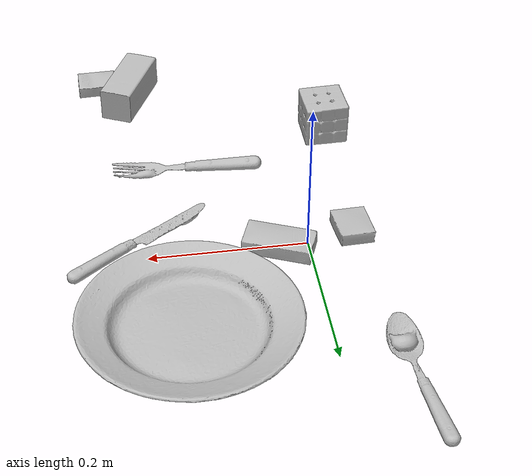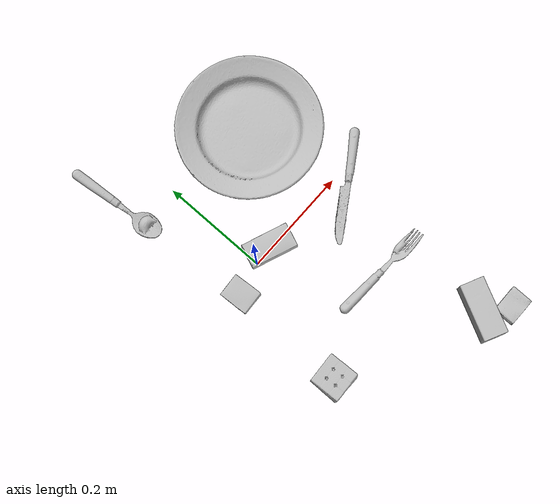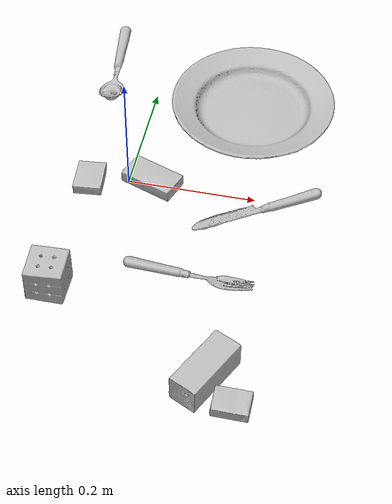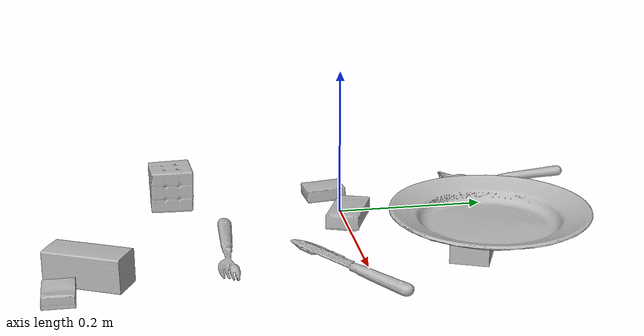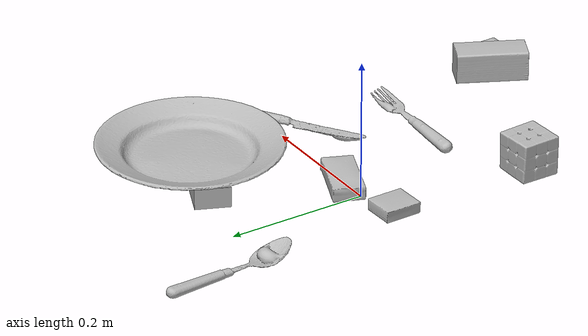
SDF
<sdf version="1.4">
  <world name="default">
    <light name="light1" type="point">
      <pose>0 0 1 0 0 0</pose>
      <diffuse>3 3 3 1</diffuse>
      <specular>3 3 3 1</specular>
    </light>
    <light name="light2" type="point">
      <pose>0 0.5 2 0 0 0</pose>
      <diffuse>1 1 1 1</diffuse>
      <specular>1 1 1 1</specular>
    </light>
    <light name="light3" type="point">
      <pose>0 0.5 2 0 0 0</pose>
      <diffuse>3 3 3 1</diffuse>
      <specular>3 3 3 1</specular>
    </light>
    <scene>
      <ambient>0.7 0.7 0.7</ambient>
    </scene>
    <model name="box11">
      <link name="link_box11">
        <collision name="default">
          <geometry>
            <mesh>
              <uri>model://rubiks_cube/collision_meshes/collision.obj</uri>
              <scale>1.0 1.0 1.0</scale>
            </mesh>
          </geometry>
          <surface>
            <friction>
              <ode>
                <mu>0.5</mu>
                <mu2>0.5</mu2>
              </ode>
            </friction>
          <contact>
        <ode>
            <max_vel>0</max_vel>
            <min_depth>0.0001</min_depth>
            <kp>1e8</kp>
        </ode>
    </contact></surface>
        </collision>
        <visual name="default">
          <geometry>
            <mesh>
              <uri>model://rubiks_cube/visual_meshes/visual.dae</uri>
              <scale>1.0 1.0 1.0</scale>
            </mesh>
          </geometry>
        </visual>
        <inertial>
          <mass>0.14537504315376282</mass>
          <pose>2.6721039830590598e-05 5.2569666877388954e-05 -7.264316082000732e-06 -0.05467316775404926 -0.09814130205097539 -0.03445549690793288</pose>
          <inertia>
            <ixx>8.032947e-05</ixx>
            <iyy>7.9954865e-05</iyy>
            <izz>8.099513e-05</izz>
            <ixy>0</ixy>
            <ixz>0</ixz>
            <iyz>0</iyz>
          </inertia>
        </inertial>
      </link>
      <pose>-0.06309342384338379 -0.22934511303901672 0.02867898717522621 -2.590021402668742e-06 -8.606970993183151e-07 -3.1041976252258547</pose>
    </model>
    <model name="box12">
      <link name="link_box12">
        <collision name="default">
          <geometry>
            <mesh>
              <uri>model://cracker_box/collision_meshes/collision.obj</uri>
              <scale>0.25 0.25 0.25</scale>
            </mesh>
          </geometry>
          <surface>
            <friction>
              <ode>
                <mu>0.5</mu>
                <mu2>0.5</mu2>
              </ode>
            </friction>
          <contact>
        <ode>
            <max_vel>0</max_vel>
            <min_depth>0.0001</min_depth>
            <kp>1e8</kp>
        </ode>
    </contact></surface>
        </collision>
        <visual name="default">
          <geometry>
            <mesh>
              <uri>model://cracker_box/visual_meshes/visual.dae</uri>
              <scale>0.25 0.25 0.25</scale>
            </mesh>
          </geometry>
        </visual>
        <inertial>
          <mass>0.04629049822688103</mass>
          <pose>0.00023660360602661967 6.358561950037256e-05 -0.00042573834070935845 -0.00031620769195764 -0.01110649332573822 0.0025467952358288496</pose>
          <inertia>
            <ixx>7.358898e-06</ixx>
            <iyy>1.2150985e-05</iyy>
            <izz>1.7340568e-05</izz>
            <ixy>0</ixy>
            <ixz>0</ixz>
            <iyz>0</iyz>
          </inertia>
        </inertial>
      </link>
      <pose>0.2352224588394165 -0.37952715158462524 0.009120454080402851 -0.011788174186284934 -0.007367103063919416 -3.141490051491588</pose>
    </model>
    <model name="box13">
      <link name="link_box13">
        <collision name="default">
          <geometry>
            <mesh>
              <uri>model://sugar_box/collision_meshes/collision.obj</uri>
              <scale>0.5 0.5 0.5</scale>
            </mesh>
          </geometry>
          <surface>
            <friction>
              <ode>
                <mu>0.5</mu>
                <mu2>0.5</mu2>
              </ode>
            </friction>
          <contact>
        <ode>
            <max_vel>0</max_vel>
            <min_depth>0.0001</min_depth>
            <kp>1e8</kp>
        </ode>
    </contact></surface>
        </collision>
        <visual name="default">
          <geometry>
            <mesh>
              <uri>model://sugar_box/visual_meshes/visual.dae</uri>
              <scale>0.5 0.5 0.5</scale>
            </mesh>
          </geometry>
        </visual>
        <inertial>
          <mass>0.06844717264175415</mass>
          <pose>0.0005171863595023751 1.924554817378521e-05 -0.00018182402709499002 -0.0004046259509043031 0.0010506635218006705 0.0026153792547683827</pose>
          <inertia>
            <ixx>1.4257497e-05</ixx>
            <iyy>4.608316e-05</iyy>
            <izz>5.5167053e-05</izz>
            <ixy>0</ixy>
            <ixz>0</ixz>
            <iyz>0</iyz>
          </inertia>
        </inertial>
      </link>
      <pose>0.03690307214856148 0.004703276790678501 0.011399306356906891 0.0007752534353417117 -0.023433228157990246 -0.3811666616782632</pose>
    </model>
    <model name="box21">
      <link name="link_box21">
        <collision name="default">
          <geometry>
            <mesh>
              <uri>model://wood_block/collision_meshes/collision.obj</uri>
              <scale>0.5 0.5 0.5</scale>
            </mesh>
          </geometry>
          <surface>
            <friction>
              <ode>
                <mu>0.5</mu>
                <mu2>0.5</mu2>
              </ode>
            </friction>
          <contact>
        <ode>
            <max_vel>0</max_vel>
            <min_depth>0.0001</min_depth>
            <kp>1e8</kp>
        </ode>
    </contact></surface>
        </collision>
        <visual name="default">
          <geometry>
            <mesh>
              <uri>model://wood_block/visual_meshes/visual.dae</uri>
              <scale>0.5 0.5 0.5</scale>
            </mesh>
          </geometry>
        </visual>
        <inertial>
          <mass>0.22006426751613617</mass>
          <pose>-2.9066577553749084e-06 -0.00028540476341731846 0.00013204292918089777 -0.05220890442695651 -0.005192696130650637 -0.006861379915905358</pose>
          <inertia>
            <ixx>7.361981e-05</ixx>
            <iyy>0.00023256506</iyy>
            <izz>0.00023169514</izz>
            <ixy>0</ixy>
            <ixz>0</ixz>
            <iyz>0</iyz>
          </inertia>
        </inertial>
      </link>
      <pose>0.19194963574409485 -0.34432452917099 0.022629259154200554 -0.005208486866984063 0.005718746356614517 -2.028083675174581</pose>
    </model>
    <model name="box22">
      <link name="link_box22">
        <collision name="default">
          <geometry>
            <mesh>
              <uri>model://jenga/collision_meshes/collision.obj</uri>
              <scale>1.0 1.0 1.0</scale>
            </mesh>
          </geometry>
          <surface>
            <friction>
              <ode>
                <mu>0.5</mu>
                <mu2>0.5</mu2>
              </ode>
            </friction>
          <contact>
        <ode>
            <max_vel>0</max_vel>
            <min_depth>0.0001</min_depth>
            <kp>1e8</kp>
        </ode>
    </contact></surface>
        </collision>
        <visual name="default">
          <geometry>
            <mesh>
              <uri>model://jenga/visual_meshes/visual.dae</uri>
              <scale>1.0 1.0 1.0</scale>
            </mesh>
          </geometry>
        </visual>
        <inertial>
          <mass>0.1883949637413025</mass>
          <pose>-2.502855807051674e-07 -0.00010250010382151231 -4.0923405322246253e-05 0.0 -7.342154049184251e-07 0.0</pose>
          <inertia>
            <ixx>5.213346e-05</ixx>
            <iyy>0.0003532549</iyy>
            <izz>0.00037712968</izz>
            <ixy>0</ixy>
            <ixz>0</ixz>
            <iyz>0</iyz>
          </inertia>
        </inertial>
      </link>
      <pose>0.14733943343162537 0.15451422333717346 0.015001780353486538 -3.82573749356902e-05 -5.57374454332991e-06 2.7406209881346753</pose>
    </model>
    <model name="box23">
      <link name="link_box23">
        <collision name="default">
          <geometry>
            <mesh>
              <uri>model://pudding_box/collision_meshes/collision.obj</uri>
              <scale>0.5 0.5 0.5</scale>
            </mesh>
          </geometry>
          <surface>
            <friction>
              <ode>
                <mu>0.5</mu>
                <mu2>0.5</mu2>
              </ode>
            </friction>
          <contact>
        <ode>
            <max_vel>0</max_vel>
            <min_depth>0.0001</min_depth>
            <kp>1e8</kp>
        </ode>
    </contact></surface>
        </collision>
        <visual name="default">
          <geometry>
            <mesh>
              <uri>model://pudding_box/visual_meshes/visual.dae</uri>
              <scale>0.5 0.5 0.5</scale>
            </mesh>
          </geometry>
        </visual>
        <inertial>
          <mass>0.030779412016272545</mass>
          <pose>0.00024474109522998333 0.0004033942532259971 -0.0002594413817860186 0.0052131022413302 -0.00660379919873188 0.020079828882866795</pose>
          <inertia>
            <ixx>8.6986365e-06</ixx>
            <iyy>5.8525034e-06</iyy>
            <izz>1.2845808e-05</izz>
            <ixy>0</ixy>
            <ixz>0</ixz>
            <iyz>0</iyz>
          </inertia>
        </inertial>
      </link>
      <pose>-0.05910255014896393 -0.013919590972363949 0.009862903505563736 0.022348503867803963 -0.011391721834085588 0.06412276964661627</pose>
    </model>
    <model name="plate1">
      <link name="link_plate1">
        <collision name="default">
          <geometry>
            <mesh>
              <uri>model://plate/collision_meshes/collision.obj</uri>
              <scale>1.0 1.0 1.0</scale>
            </mesh>
          </geometry>
          <surface>
            <friction>
              <ode>
                <mu>0.5</mu>
                <mu2>0.5</mu2>
              </ode>
            </friction>
          <contact>
        <ode>
            <max_vel>0</max_vel>
            <min_depth>0.0001</min_depth>
            <kp>1e8</kp>
        </ode>
    </contact></surface>
        </collision>
        <visual name="default">
          <geometry>
            <mesh>
              <uri>model://plate/visual_meshes/visual.dae</uri>
              <scale>1.0 1.0 1.0</scale>
            </mesh>
          </geometry>
        </visual>
        <inertial>
          <mass>0.2551877498626709</mass>
          <pose>-0.0006044633337296546 0.0002782584633678198 -0.0010561984963715076 0.002218758596895186 -0.003225500510611216 0.45261892370472845</pose>
          <inertia>
            <ixx>0.0011937734</ixx>
            <iyy>0.0011823553</iyy>
            <izz>0.002334842</izz>
            <ixy>0</ixy>
            <ixz>0</ixz>
            <iyz>0</iyz>
          </inertia>
        </inertial>
      </link>
      <pose>0.16680341958999634 0.1651696115732193 0.04366663470864296 0.001027143261713656 0.0001206214975468374 1.5767449800217381</pose>
    </model>
    <model name="silverware1">
      <link name="link_silverware1">
        <collision name="default">
          <geometry>
            <mesh>
              <uri>model://knife/collision_meshes/collision.obj</uri>
              <scale>1.0 1.0 1.0</scale>
            </mesh>
          </geometry>
          <surface>
            <friction>
              <ode>
                <mu>0.5</mu>
                <mu2>0.5</mu2>
              </ode>
            </friction>
          <contact>
        <ode>
            <max_vel>0</max_vel>
            <min_depth>0.0001</min_depth>
            <kp>1e8</kp>
        </ode>
    </contact></surface>
        </collision>
        <visual name="default">
          <geometry>
            <mesh>
              <uri>model://knife/visual_meshes/visual.dae</uri>
              <scale>1.0 1.0 1.0</scale>
            </mesh>
          </geometry>
        </visual>
        <inertial>
          <mass>0.030903667211532593</mass>
          <pose>-0.023785250261425972 0.0015275125624611974 5.062023410573602e-05 0.07305665398911224 0.017248417197799442 -0.0074098217442817044</pose>
          <inertia>
            <ixx>8.7717143e-07</ixx>
            <iyy>0.00011872688</iyy>
            <izz>0.000119009375</izz>
            <ixy>0</ixy>
            <ixz>0</ixz>
            <iyz>0</iyz>
          </inertia>
        </inertial>
      </link>
      <pose>0.20765700936317444 -0.024659879505634308 0.00794652197510004 -0.023906596331028544 -0.014542501817713455 -2.5739450722765627</pose>
    </model>
    <model name="silverware2">
      <link name="link_silverware2">
        <collision name="default">
          <geometry>
            <mesh>
              <uri>model://spoon/collision_meshes/collision.obj</uri>
              <scale>1.0 1.0 1.0</scale>
            </mesh>
          </geometry>
          <surface>
            <friction>
              <ode>
                <mu>0.5</mu>
                <mu2>0.5</mu2>
              </ode>
            </friction>
          <contact>
        <ode>
            <max_vel>0</max_vel>
            <min_depth>0.0001</min_depth>
            <kp>1e8</kp>
        </ode>
    </contact></surface>
        </collision>
        <visual name="default">
          <geometry>
            <mesh>
              <uri>model://spoon/visual_meshes/visual.dae</uri>
              <scale>1.0 1.0 1.0</scale>
            </mesh>
          </geometry>
        </visual>
        <inertial>
          <mass>0.020994963124394417</mass>
          <pose>-0.005526323337107897 -0.00160341733135283 -0.0007271658978424966 0.035216710718480135 -0.03906584501417282 0.00615060951780049</pose>
          <inertia>
            <ixx>1.1677738e-06</ixx>
            <iyy>7.988513e-05</iyy>
            <izz>8.046103e-05</izz>
            <ixy>0</ixy>
            <ixz>0</ixz>
            <iyz>0</iyz>
          </inertia>
        </inertial>
      </link>
      <pose>-0.08034521341323853 0.25552603602409363 0.008385264314711094 0.006731853356463656 0.02689297265074608 -1.480196561538474</pose>
    </model>
    <model name="silverware3">
      <link name="link_silverware3">
        <collision name="default">
          <geometry>
            <mesh>
              <uri>model://fork/collision_meshes/collision.obj</uri>
              <scale>1.0 1.0 1.0</scale>
            </mesh>
          </geometry>
          <surface>
            <friction>
              <ode>
                <mu>0.5</mu>
                <mu2>0.5</mu2>
              </ode>
            </friction>
          <contact>
        <ode>
            <max_vel>0</max_vel>
            <min_depth>0.0001</min_depth>
            <kp>1e8</kp>
        </ode>
    </contact></surface>
        </collision>
        <visual name="default">
          <geometry>
            <mesh>
              <uri>model://fork/visual_meshes/visual.dae</uri>
              <scale>1.0 1.0 1.0</scale>
            </mesh>
          </geometry>
        </visual>
        <inertial>
          <mass>0.012144052423536777</mass>
          <pose>-0.029570043087005615 0.0004658822144847363 0.0003218860656488687 -0.013551171335247731 -0.01097783699854739 0.014453902564514984</pose>
          <inertia>
            <ixx>4.257177e-07</ixx>
            <iyy>3.170462e-05</iyy>
            <izz>3.1895037e-05</izz>
            <ixy>0</ixy>
            <ixz>0</ixz>
            <iyz>0</iyz>
          </inertia>
        </inertial>
      </link>
      <pose>0.13082197308540344 -0.1706627458333969 0.005759349092841148 -0.19110634420678288 0.02394201964258862 -0.06204897407795062</pose>
    </model>
  <physics type="ode">
      <max_contacts>50</max_contacts>
      <ode>
        <solver>
          <type>quick</type>
          <iters>75</iters>
        </solver>
        <constraints>
          <contact_max_correcting_vel>0</contact_max_correcting_vel>
          <contact_surface_layer>0</contact_surface_layer>
        </constraints>
      </ode>
    </physics></world>
</sdf>
